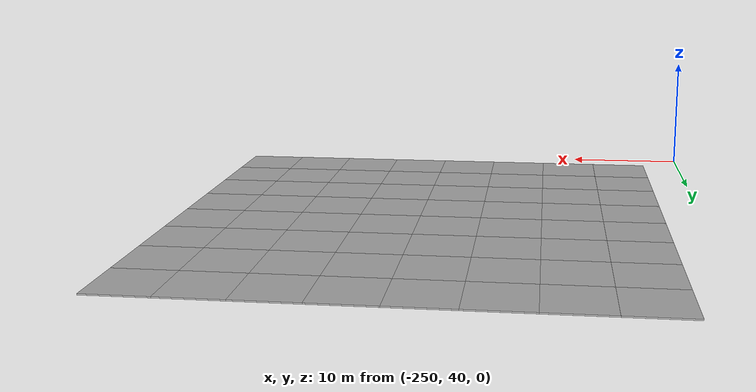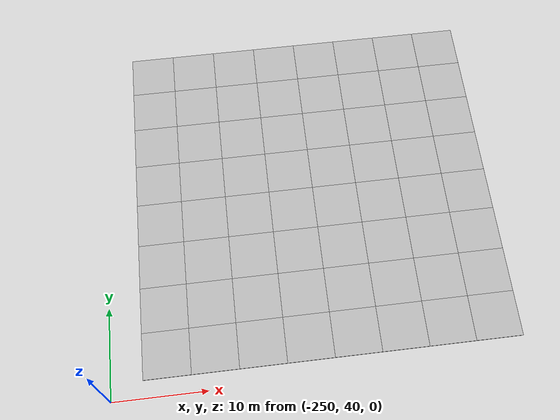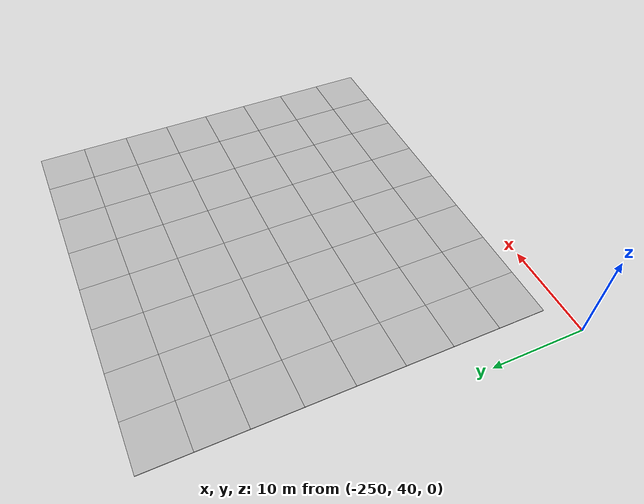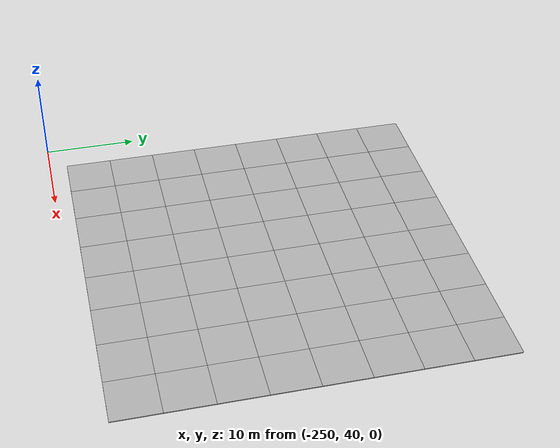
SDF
<sdf version="1.7">
 <world name="default">
  <model name="mud_plane_40x40_25">
   <model name="mud_plane_20x20">
    <model name="mud_plane">
     <static>1</static>
     <link name="link">
      <collision name="collision"><geometry><box><size>10 10 0.1</size></box></geometry></collision>
      <visual name="visual_1">
       <pose>-2.5 2.5 -0.05 0 -0 0</pose>
       <cast_shadows>0</cast_shadows>
       <geometry><box><size>5 5 0.1</size></box></geometry>
       <material>
        <script>
         <uri>model://mud_plane/materials/scripts</uri>
         <uri>model://mud_plane/materials/textures</uri>
         <name>vrc/mud</name>
        </script>
       </material>
      </visual>
      <visual name="visual_2">
       <pose>2.5 2.5 -0.05 0 -0 0</pose>
       <cast_shadows>0</cast_shadows>
       <geometry><box><size>5 5 0.1</size></box></geometry>
       <material>
        <script>
         <uri>model://mud_plane/materials/scripts</uri>
         <uri>model://mud_plane/materials/textures</uri>
         <name>vrc/mud</name>
        </script>
       </material>
      </visual>
      <visual name="visual_3">
       <pose>2.5 -2.5 -0.05 0 -0 0</pose>
       <cast_shadows>0</cast_shadows>
       <geometry><box><size>5 5 0.1</size></box></geometry>
       <material>
        <script>
         <uri>model://mud_plane/materials/scripts</uri>
         <uri>model://mud_plane/materials/textures</uri>
         <name>vrc/mud</name>
        </script>
       </material>
      </visual>
      <visual name="visual_4">
       <pose>-2.5 -2.5 -0.05 0 -0 0</pose>
       <cast_shadows>0</cast_shadows>
       <geometry><box><size>5 5 0.1</size></box></geometry>
       <material>
        <script>
         <uri>model://mud_plane/materials/scripts</uri>
         <uri>model://mud_plane/materials/textures</uri>
         <name>vrc/mud</name>
        </script>
       </material>
      </visual>
     </link>
     <pose>-4.99986 -4.99991 0 0 -0 0</pose>
    </model>
    <model name="mud_plane_0">
     <static>1</static>
     <link name="link">
      <collision name="collision"><geometry><box><size>10 10 0.1</size></box></geometry></collision>
      <visual name="visual_1">
       <pose>-2.5 2.5 -0.05 0 -0 0</pose>
       <cast_shadows>0</cast_shadows>
       <geometry><box><size>5 5 0.1</size></box></geometry>
       <material>
        <script>
         <uri>model://mud_plane/materials/scripts</uri>
         <uri>model://mud_plane/materials/textures</uri>
         <name>vrc/mud</name>
        </script>
       </material>
      </visual>
      <visual name="visual_2">
       <pose>2.5 2.5 -0.05 0 -0 0</pose>
       <cast_shadows>0</cast_shadows>
       <geometry><box><size>5 5 0.1</size></box></geometry>
       <material>
        <script>
         <uri>model://mud_plane/materials/scripts</uri>
         <uri>model://mud_plane/materials/textures</uri>
         <name>vrc/mud</name>
        </script>
       </material>
      </visual>
      <visual name="visual_3">
       <pose>2.5 -2.5 -0.05 0 -0 0</pose>
       <cast_shadows>0</cast_shadows>
       <geometry><box><size>5 5 0.1</size></box></geometry>
       <material>
        <script>
         <uri>model://mud_plane/materials/scripts</uri>
         <uri>model://mud_plane/materials/textures</uri>
         <name>vrc/mud</name>
        </script>
       </material>
      </visual>
      <visual name="visual_4">
       <pose>-2.5 -2.5 -0.05 0 -0 0</pose>
       <cast_shadows>0</cast_shadows>
       <geometry><box><size>5 5 0.1</size></box></geometry>
       <material>
        <script>
         <uri>model://mud_plane/materials/scripts</uri>
         <uri>model://mud_plane/materials/textures</uri>
         <name>vrc/mud</name>
        </script>
       </material>
      </visual>
     </link>
     <pose>-4.99946 4.99954 0 0 -0 0</pose>
    </model>
    <model name="mud_plane_1">
     <static>1</static>
     <link name="link">
      <collision name="collision"><geometry><box><size>10 10 0.1</size></box></geometry></collision>
      <visual name="visual_1">
       <pose>-2.5 2.5 -0.05 0 -0 0</pose>
       <cast_shadows>0</cast_shadows>
       <geometry><box><size>5 5 0.1</size></box></geometry>
       <material>
        <script>
         <uri>model://mud_plane/materials/scripts</uri>
         <uri>model://mud_plane/materials/textures</uri>
         <name>vrc/mud</name>
        </script>
       </material>
      </visual>
      <visual name="visual_2">
       <pose>2.5 2.5 -0.05 0 -0 0</pose>
       <cast_shadows>0</cast_shadows>
       <geometry><box><size>5 5 0.1</size></box></geometry>
       <material>
        <script>
         <uri>model://mud_plane/materials/scripts</uri>
         <uri>model://mud_plane/materials/textures</uri>
         <name>vrc/mud</name>
        </script>
       </material>
      </visual>
      <visual name="visual_3">
       <pose>2.5 -2.5 -0.05 0 -0 0</pose>
       <cast_shadows>0</cast_shadows>
       <geometry><box><size>5 5 0.1</size></box></geometry>
       <material>
        <script>
         <uri>model://mud_plane/materials/scripts</uri>
         <uri>model://mud_plane/materials/textures</uri>
         <name>vrc/mud</name>
        </script>
       </material>
      </visual>
      <visual name="visual_4">
       <pose>-2.5 -2.5 -0.05 0 -0 0</pose>
       <cast_shadows>0</cast_shadows>
       <geometry><box><size>5 5 0.1</size></box></geometry>
       <material>
        <script>
         <uri>model://mud_plane/materials/scripts</uri>
         <uri>model://mud_plane/materials/textures</uri>
         <name>vrc/mud</name>
        </script>
       </material>
      </visual>
     </link>
     <pose>4.99964 -4.99949 0 0 -0 0</pose>
    </model>
    <model name="mud_plane_2">
     <static>1</static>
     <link name="link">
      <collision name="collision"><geometry><box><size>10 10 0.1</size></box></geometry></collision>
      <visual name="visual_1">
       <pose>-2.5 2.5 -0.05 0 -0 0</pose>
       <cast_shadows>0</cast_shadows>
       <geometry><box><size>5 5 0.1</size></box></geometry>
       <material>
        <script>
         <uri>model://mud_plane/materials/scripts</uri>
         <uri>model://mud_plane/materials/textures</uri>
         <name>vrc/mud</name>
        </script>
       </material>
      </visual>
      <visual name="visual_2">
       <pose>2.5 2.5 -0.05 0 -0 0</pose>
       <cast_shadows>0</cast_shadows>
       <geometry><box><size>5 5 0.1</size></box></geometry>
       <material>
        <script>
         <uri>model://mud_plane/materials/scripts</uri>
         <uri>model://mud_plane/materials/textures</uri>
         <name>vrc/mud</name>
        </script>
       </material>
      </visual>
      <visual name="visual_3">
       <pose>2.5 -2.5 -0.05 0 -0 0</pose>
       <cast_shadows>0</cast_shadows>
       <geometry><box><size>5 5 0.1</size></box></geometry>
       <material>
        <script>
         <uri>model://mud_plane/materials/scripts</uri>
         <uri>model://mud_plane/materials/textures</uri>
         <name>vrc/mud</name>
        </script>
       </material>
      </visual>
      <visual name="visual_4">
       <pose>-2.5 -2.5 -0.05 0 -0 0</pose>
       <cast_shadows>0</cast_shadows>
       <geometry><box><size>5 5 0.1</size></box></geometry>
       <material>
        <script>
         <uri>model://mud_plane/materials/scripts</uri>
         <uri>model://mud_plane/materials/textures</uri>
         <name>vrc/mud</name>
        </script>
       </material>
      </visual>
     </link>
     <pose>4.99967 4.99986 0 0 -0 0</pose>
    </model>
    <static>0</static>
    <pose>-9.99895 9.99843 0 0 -0 0</pose>
   </model>
   <model name="mud_plane_20x20_0">
    <model name="mud_plane">
     <static>1</static>
     <link name="link">
      <collision name="collision"><geometry><box><size>10 10 0.1</size></box></geometry></collision>
      <visual name="visual_1">
       <pose>-2.5 2.5 -0.05 0 -0 0</pose>
       <cast_shadows>0</cast_shadows>
       <geometry><box><size>5 5 0.1</size></box></geometry>
       <material>
        <script>
         <uri>model://mud_plane/materials/scripts</uri>
         <uri>model://mud_plane/materials/textures</uri>
         <name>vrc/mud</name>
        </script>
       </material>
      </visual>
      <visual name="visual_2">
       <pose>2.5 2.5 -0.05 0 -0 0</pose>
       <cast_shadows>0</cast_shadows>
       <geometry><box><size>5 5 0.1</size></box></geometry>
       <material>
        <script>
         <uri>model://mud_plane/materials/scripts</uri>
         <uri>model://mud_plane/materials/textures</uri>
         <name>vrc/mud</name>
        </script>
       </material>
      </visual>
      <visual name="visual_3">
       <pose>2.5 -2.5 -0.05 0 -0 0</pose>
       <cast_shadows>0</cast_shadows>
       <geometry><box><size>5 5 0.1</size></box></geometry>
       <material>
        <script>
         <uri>model://mud_plane/materials/scripts</uri>
         <uri>model://mud_plane/materials/textures</uri>
         <name>vrc/mud</name>
        </script>
       </material>
      </visual>
      <visual name="visual_4">
       <pose>-2.5 -2.5 -0.05 0 -0 0</pose>
       <cast_shadows>0</cast_shadows>
       <geometry><box><size>5 5 0.1</size></box></geometry>
       <material>
        <script>
         <uri>model://mud_plane/materials/scripts</uri>
         <uri>model://mud_plane/materials/textures</uri>
         <name>vrc/mud</name>
        </script>
       </material>
      </visual>
     </link>
     <pose>-4.99986 -4.99991 0 0 -0 0</pose>
    </model>
    <model name="mud_plane_0">
     <static>1</static>
     <link name="link">
      <collision name="collision"><geometry><box><size>10 10 0.1</size></box></geometry></collision>
      <visual name="visual_1">
       <pose>-2.5 2.5 -0.05 0 -0 0</pose>
       <cast_shadows>0</cast_shadows>
       <geometry><box><size>5 5 0.1</size></box></geometry>
       <material>
        <script>
         <uri>model://mud_plane/materials/scripts</uri>
         <uri>model://mud_plane/materials/textures</uri>
         <name>vrc/mud</name>
        </script>
       </material>
      </visual>
      <visual name="visual_2">
       <pose>2.5 2.5 -0.05 0 -0 0</pose>
       <cast_shadows>0</cast_shadows>
       <geometry><box><size>5 5 0.1</size></box></geometry>
       <material>
        <script>
         <uri>model://mud_plane/materials/scripts</uri>
         <uri>model://mud_plane/materials/textures</uri>
         <name>vrc/mud</name>
        </script>
       </material>
      </visual>
      <visual name="visual_3">
       <pose>2.5 -2.5 -0.05 0 -0 0</pose>
       <cast_shadows>0</cast_shadows>
       <geometry><box><size>5 5 0.1</size></box></geometry>
       <material>
        <script>
         <uri>model://mud_plane/materials/scripts</uri>
         <uri>model://mud_plane/materials/textures</uri>
         <name>vrc/mud</name>
        </script>
       </material>
      </visual>
      <visual name="visual_4">
       <pose>-2.5 -2.5 -0.05 0 -0 0</pose>
       <cast_shadows>0</cast_shadows>
       <geometry><box><size>5 5 0.1</size></box></geometry>
       <material>
        <script>
         <uri>model://mud_plane/materials/scripts</uri>
         <uri>model://mud_plane/materials/textures</uri>
         <name>vrc/mud</name>
        </script>
       </material>
      </visual>
     </link>
     <pose>-4.99946 4.99954 0 0 -0 0</pose>
    </model>
    <model name="mud_plane_1">
     <static>1</static>
     <link name="link">
      <collision name="collision"><geometry><box><size>10 10 0.1</size></box></geometry></collision>
      <visual name="visual_1">
       <pose>-2.5 2.5 -0.05 0 -0 0</pose>
       <cast_shadows>0</cast_shadows>
       <geometry><box><size>5 5 0.1</size></box></geometry>
       <material>
        <script>
         <uri>model://mud_plane/materials/scripts</uri>
         <uri>model://mud_plane/materials/textures</uri>
         <name>vrc/mud</name>
        </script>
       </material>
      </visual>
      <visual name="visual_2">
       <pose>2.5 2.5 -0.05 0 -0 0</pose>
       <cast_shadows>0</cast_shadows>
       <geometry><box><size>5 5 0.1</size></box></geometry>
       <material>
        <script>
         <uri>model://mud_plane/materials/scripts</uri>
         <uri>model://mud_plane/materials/textures</uri>
         <name>vrc/mud</name>
        </script>
       </material>
      </visual>
      <visual name="visual_3">
       <pose>2.5 -2.5 -0.05 0 -0 0</pose>
       <cast_shadows>0</cast_shadows>
       <geometry><box><size>5 5 0.1</size></box></geometry>
       <material>
        <script>
         <uri>model://mud_plane/materials/scripts</uri>
         <uri>model://mud_plane/materials/textures</uri>
         <name>vrc/mud</name>
        </script>
       </material>
      </visual>
      <visual name="visual_4">
       <pose>-2.5 -2.5 -0.05 0 -0 0</pose>
       <cast_shadows>0</cast_shadows>
       <geometry><box><size>5 5 0.1</size></box></geometry>
       <material>
        <script>
         <uri>model://mud_plane/materials/scripts</uri>
         <uri>model://mud_plane/materials/textures</uri>
         <name>vrc/mud</name>
        </script>
       </material>
      </visual>
     </link>
     <pose>4.99964 -4.99949 0 0 -0 0</pose>
    </model>
    <model name="mud_plane_2">
     <static>1</static>
     <link name="link">
      <collision name="collision"><geometry><box><size>10 10 0.1</size></box></geometry></collision>
      <visual name="visual_1">
       <pose>-2.5 2.5 -0.05 0 -0 0</pose>
       <cast_shadows>0</cast_shadows>
       <geometry><box><size>5 5 0.1</size></box></geometry>
       <material>
        <script>
         <uri>model://mud_plane/materials/scripts</uri>
         <uri>model://mud_plane/materials/textures</uri>
         <name>vrc/mud</name>
        </script>
       </material>
      </visual>
      <visual name="visual_2">
       <pose>2.5 2.5 -0.05 0 -0 0</pose>
       <cast_shadows>0</cast_shadows>
       <geometry><box><size>5 5 0.1</size></box></geometry>
       <material>
        <script>
         <uri>model://mud_plane/materials/scripts</uri>
         <uri>model://mud_plane/materials/textures</uri>
         <name>vrc/mud</name>
        </script>
       </material>
      </visual>
      <visual name="visual_3">
       <pose>2.5 -2.5 -0.05 0 -0 0</pose>
       <cast_shadows>0</cast_shadows>
       <geometry><box><size>5 5 0.1</size></box></geometry>
       <material>
        <script>
         <uri>model://mud_plane/materials/scripts</uri>
         <uri>model://mud_plane/materials/textures</uri>
         <name>vrc/mud</name>
        </script>
       </material>
      </visual>
      <visual name="visual_4">
       <pose>-2.5 -2.5 -0.05 0 -0 0</pose>
       <cast_shadows>0</cast_shadows>
       <geometry><box><size>5 5 0.1</size></box></geometry>
       <material>
        <script>
         <uri>model://mud_plane/materials/scripts</uri>
         <uri>model://mud_plane/materials/textures</uri>
         <name>vrc/mud</name>
        </script>
       </material>
      </visual>
     </link>
     <pose>4.99967 4.99986 0 0 -0 0</pose>
    </model>
    <static>0</static>
    <pose>9.99933 9.9997 0 0 -0 0</pose>
   </model>
   <model name="mud_plane_20x20_1">
    <model name="mud_plane">
     <static>1</static>
     <link name="link">
      <collision name="collision"><geometry><box><size>10 10 0.1</size></box></geometry></collision>
      <visual name="visual_1">
       <pose>-2.5 2.5 -0.05 0 -0 0</pose>
       <cast_shadows>0</cast_shadows>
       <geometry><box><size>5 5 0.1</size></box></geometry>
       <material>
        <script>
         <uri>model://mud_plane/materials/scripts</uri>
         <uri>model://mud_plane/materials/textures</uri>
         <name>vrc/mud</name>
        </script>
       </material>
      </visual>
      <visual name="visual_2">
       <pose>2.5 2.5 -0.05 0 -0 0</pose>
       <cast_shadows>0</cast_shadows>
       <geometry><box><size>5 5 0.1</size></box></geometry>
       <material>
        <script>
         <uri>model://mud_plane/materials/scripts</uri>
         <uri>model://mud_plane/materials/textures</uri>
         <name>vrc/mud</name>
        </script>
       </material>
      </visual>
      <visual name="visual_3">
       <pose>2.5 -2.5 -0.05 0 -0 0</pose>
       <cast_shadows>0</cast_shadows>
       <geometry><box><size>5 5 0.1</size></box></geometry>
       <material>
        <script>
         <uri>model://mud_plane/materials/scripts</uri>
         <uri>model://mud_plane/materials/textures</uri>
         <name>vrc/mud</name>
        </script>
       </material>
      </visual>
      <visual name="visual_4">
       <pose>-2.5 -2.5 -0.05 0 -0 0</pose>
       <cast_shadows>0</cast_shadows>
       <geometry><box><size>5 5 0.1</size></box></geometry>
       <material>
        <script>
         <uri>model://mud_plane/materials/scripts</uri>
         <uri>model://mud_plane/materials/textures</uri>
         <name>vrc/mud</name>
        </script>
       </material>
      </visual>
     </link>
     <pose>-4.99986 -4.99991 0 0 -0 0</pose>
    </model>
    <model name="mud_plane_0">
     <static>1</static>
     <link name="link">
      <collision name="collision"><geometry><box><size>10 10 0.1</size></box></geometry></collision>
      <visual name="visual_1">
       <pose>-2.5 2.5 -0.05 0 -0 0</pose>
       <cast_shadows>0</cast_shadows>
       <geometry><box><size>5 5 0.1</size></box></geometry>
       <material>
        <script>
         <uri>model://mud_plane/materials/scripts</uri>
         <uri>model://mud_plane/materials/textures</uri>
         <name>vrc/mud</name>
        </script>
       </material>
      </visual>
      <visual name="visual_2">
       <pose>2.5 2.5 -0.05 0 -0 0</pose>
       <cast_shadows>0</cast_shadows>
       <geometry><box><size>5 5 0.1</size></box></geometry>
       <material>
        <script>
         <uri>model://mud_plane/materials/scripts</uri>
         <uri>model://mud_plane/materials/textures</uri>
         <name>vrc/mud</name>
        </script>
       </material>
      </visual>
      <visual name="visual_3">
       <pose>2.5 -2.5 -0.05 0 -0 0</pose>
       <cast_shadows>0</cast_shadows>
       <geometry><box><size>5 5 0.1</size></box></geometry>
       <material>
        <script>
         <uri>model://mud_plane/materials/scripts</uri>
         <uri>model://mud_plane/materials/textures</uri>
         <name>vrc/mud</name>
        </script>
       </material>
      </visual>
      <visual name="visual_4">
       <pose>-2.5 -2.5 -0.05 0 -0 0</pose>
       <cast_shadows>0</cast_shadows>
       <geometry><box><size>5 5 0.1</size></box></geometry>
       <material>
        <script>
         <uri>model://mud_plane/materials/scripts</uri>
         <uri>model://mud_plane/materials/textures</uri>
         <name>vrc/mud</name>
        </script>
       </material>
      </visual>
     </link>
     <pose>-4.99946 4.99954 0 0 -0 0</pose>
    </model>
    <model name="mud_plane_1">
     <static>1</static>
     <link name="link">
      <collision name="collision"><geometry><box><size>10 10 0.1</size></box></geometry></collision>
      <visual name="visual_1">
       <pose>-2.5 2.5 -0.05 0 -0 0</pose>
       <cast_shadows>0</cast_shadows>
       <geometry><box><size>5 5 0.1</size></box></geometry>
       <material>
        <script>
         <uri>model://mud_plane/materials/scripts</uri>
         <uri>model://mud_plane/materials/textures</uri>
         <name>vrc/mud</name>
        </script>
       </material>
      </visual>
      <visual name="visual_2">
       <pose>2.5 2.5 -0.05 0 -0 0</pose>
       <cast_shadows>0</cast_shadows>
       <geometry><box><size>5 5 0.1</size></box></geometry>
       <material>
        <script>
         <uri>model://mud_plane/materials/scripts</uri>
         <uri>model://mud_plane/materials/textures</uri>
         <name>vrc/mud</name>
        </script>
       </material>
      </visual>
      <visual name="visual_3">
       <pose>2.5 -2.5 -0.05 0 -0 0</pose>
       <cast_shadows>0</cast_shadows>
       <geometry><box><size>5 5 0.1</size></box></geometry>
       <material>
        <script>
         <uri>model://mud_plane/materials/scripts</uri>
         <uri>model://mud_plane/materials/textures</uri>
         <name>vrc/mud</name>
        </script>
       </material>
      </visual>
      <visual name="visual_4">
       <pose>-2.5 -2.5 -0.05 0 -0 0</pose>
       <cast_shadows>0</cast_shadows>
       <geometry><box><size>5 5 0.1</size></box></geometry>
       <material>
        <script>
         <uri>model://mud_plane/materials/scripts</uri>
         <uri>model://mud_plane/materials/textures</uri>
         <name>vrc/mud</name>
        </script>
       </material>
      </visual>
     </link>
     <pose>4.99964 -4.99949 0 0 -0 0</pose>
    </model>
    <model name="mud_plane_2">
     <static>1</static>
     <link name="link">
      <collision name="collision"><geometry><box><size>10 10 0.1</size></box></geometry></collision>
      <visual name="visual_1">
       <pose>-2.5 2.5 -0.05 0 -0 0</pose>
       <cast_shadows>0</cast_shadows>
       <geometry><box><size>5 5 0.1</size></box></geometry>
       <material>
        <script>
         <uri>model://mud_plane/materials/scripts</uri>
         <uri>model://mud_plane/materials/textures</uri>
         <name>vrc/mud</name>
        </script>
       </material>
      </visual>
      <visual name="visual_2">
       <pose>2.5 2.5 -0.05 0 -0 0</pose>
       <cast_shadows>0</cast_shadows>
       <geometry><box><size>5 5 0.1</size></box></geometry>
       <material>
        <script>
         <uri>model://mud_plane/materials/scripts</uri>
         <uri>model://mud_plane/materials/textures</uri>
         <name>vrc/mud</name>
        </script>
       </material>
      </visual>
      <visual name="visual_3">
       <pose>2.5 -2.5 -0.05 0 -0 0</pose>
       <cast_shadows>0</cast_shadows>
       <geometry><box><size>5 5 0.1</size></box></geometry>
       <material>
        <script>
         <uri>model://mud_plane/materials/scripts</uri>
         <uri>model://mud_plane/materials/textures</uri>
         <name>vrc/mud</name>
        </script>
       </material>
      </visual>
      <visual name="visual_4">
       <pose>-2.5 -2.5 -0.05 0 -0 0</pose>
       <cast_shadows>0</cast_shadows>
       <geometry><box><size>5 5 0.1</size></box></geometry>
       <material>
        <script>
         <uri>model://mud_plane/materials/scripts</uri>
         <uri>model://mud_plane/materials/textures</uri>
         <name>vrc/mud</name>
        </script>
       </material>
      </visual>
     </link>
     <pose>4.99967 4.99986 0 0 -0 0</pose>
    </model>
    <static>0</static>
    <pose>9.9993 -9.99877 0 0 -0 0</pose>
   </model>
   <model name="mud_plane_20x20_2">
    <model name="mud_plane">
     <static>1</static>
     <link name="link">
      <collision name="collision"><geometry><box><size>10 10 0.1</size></box></geometry></collision>
      <visual name="visual_1">
       <pose>-2.5 2.5 -0.05 0 -0 0</pose>
       <cast_shadows>0</cast_shadows>
       <geometry><box><size>5 5 0.1</size></box></geometry>
       <material>
        <script>
         <uri>model://mud_plane/materials/scripts</uri>
         <uri>model://mud_plane/materials/textures</uri>
         <name>vrc/mud</name>
        </script>
       </material>
      </visual>
      <visual name="visual_2">
       <pose>2.5 2.5 -0.05 0 -0 0</pose>
       <cast_shadows>0</cast_shadows>
       <geometry><box><size>5 5 0.1</size></box></geometry>
       <material>
        <script>
         <uri>model://mud_plane/materials/scripts</uri>
         <uri>model://mud_plane/materials/textures</uri>
         <name>vrc/mud</name>
        </script>
       </material>
      </visual>
      <visual name="visual_3">
       <pose>2.5 -2.5 -0.05 0 -0 0</pose>
       <cast_shadows>0</cast_shadows>
       <geometry><box><size>5 5 0.1</size></box></geometry>
       <material>
        <script>
         <uri>model://mud_plane/materials/scripts</uri>
         <uri>model://mud_plane/materials/textures</uri>
         <name>vrc/mud</name>
        </script>
       </material>
      </visual>
      <visual name="visual_4">
       <pose>-2.5 -2.5 -0.05 0 -0 0</pose>
       <cast_shadows>0</cast_shadows>
       <geometry><box><size>5 5 0.1</size></box></geometry>
       <material>
        <script>
         <uri>model://mud_plane/materials/scripts</uri>
         <uri>model://mud_plane/materials/textures</uri>
         <name>vrc/mud</name>
        </script>
       </material>
      </visual>
     </link>
     <pose>-4.99986 -4.99991 0 0 -0 0</pose>
    </model>
    <model name="mud_plane_0">
     <static>1</static>
     <link name="link">
      <collision name="collision"><geometry><box><size>10 10 0.1</size></box></geometry></collision>
      <visual name="visual_1">
       <pose>-2.5 2.5 -0.05 0 -0 0</pose>
       <cast_shadows>0</cast_shadows>
       <geometry><box><size>5 5 0.1</size></box></geometry>
       <material>
        <script>
         <uri>model://mud_plane/materials/scripts</uri>
         <uri>model://mud_plane/materials/textures</uri>
         <name>vrc/mud</name>
        </script>
       </material>
      </visual>
      <visual name="visual_2">
       <pose>2.5 2.5 -0.05 0 -0 0</pose>
       <cast_shadows>0</cast_shadows>
       <geometry><box><size>5 5 0.1</size></box></geometry>
       <material>
        <script>
         <uri>model://mud_plane/materials/scripts</uri>
         <uri>model://mud_plane/materials/textures</uri>
         <name>vrc/mud</name>
        </script>
       </material>
      </visual>
      <visual name="visual_3">
       <pose>2.5 -2.5 -0.05 0 -0 0</pose>
       <cast_shadows>0</cast_shadows>
       <geometry><box><size>5 5 0.1</size></box></geometry>
       <material>
        <script>
         <uri>model://mud_plane/materials/scripts</uri>
         <uri>model://mud_plane/materials/textures</uri>
         <name>vrc/mud</name>
        </script>
       </material>
      </visual>
      <visual name="visual_4">
       <pose>-2.5 -2.5 -0.05 0 -0 0</pose>
       <cast_shadows>0</cast_shadows>
       <geometry><box><size>5 5 0.1</size></box></geometry>
       <material>
        <script>
         <uri>model://mud_plane/materials/scripts</uri>
         <uri>model://mud_plane/materials/textures</uri>
         <name>vrc/mud</name>
        </script>
       </material>
      </visual>
     </link>
     <pose>-4.99946 4.99954 0 0 -0 0</pose>
    </model>
    <model name="mud_plane_1">
     <static>1</static>
     <link name="link">
      <collision name="collision"><geometry><box><size>10 10 0.1</size></box></geometry></collision>
      <visual name="visual_1">
       <pose>-2.5 2.5 -0.05 0 -0 0</pose>
       <cast_shadows>0</cast_shadows>
       <geometry><box><size>5 5 0.1</size></box></geometry>
       <material>
        <script>
         <uri>model://mud_plane/materials/scripts</uri>
         <uri>model://mud_plane/materials/textures</uri>
         <name>vrc/mud</name>
        </script>
       </material>
      </visual>
      <visual name="visual_2">
       <pose>2.5 2.5 -0.05 0 -0 0</pose>
       <cast_shadows>0</cast_shadows>
       <geometry><box><size>5 5 0.1</size></box></geometry>
       <material>
        <script>
         <uri>model://mud_plane/materials/scripts</uri>
         <uri>model://mud_plane/materials/textures</uri>
         <name>vrc/mud</name>
        </script>
       </material>
      </visual>
      <visual name="visual_3">
       <pose>2.5 -2.5 -0.05 0 -0 0</pose>
       <cast_shadows>0</cast_shadows>
       <geometry><box><size>5 5 0.1</size></box></geometry>
       <material>
        <script>
         <uri>model://mud_plane/materials/scripts</uri>
         <uri>model://mud_plane/materials/textures</uri>
         <name>vrc/mud</name>
        </script>
       </material>
      </visual>
      <visual name="visual_4">
       <pose>-2.5 -2.5 -0.05 0 -0 0</pose>
       <cast_shadows>0</cast_shadows>
       <geometry><box><size>5 5 0.1</size></box></geometry>
       <material>
        <script>
         <uri>model://mud_plane/materials/scripts</uri>
         <uri>model://mud_plane/materials/textures</uri>
         <name>vrc/mud</name>
        </script>
       </material>
      </visual>
     </link>
     <pose>4.99964 -4.99949 0 0 -0 0</pose>
    </model>
    <model name="mud_plane_2">
     <static>1</static>
     <link name="link">
      <collision name="collision"><geometry><box><size>10 10 0.1</size></box></geometry></collision>
      <visual name="visual_1">
       <pose>-2.5 2.5 -0.05 0 -0 0</pose>
       <cast_shadows>0</cast_shadows>
       <geometry><box><size>5 5 0.1</size></box></geometry>
       <material>
        <script>
         <uri>model://mud_plane/materials/scripts</uri>
         <uri>model://mud_plane/materials/textures</uri>
         <name>vrc/mud</name>
        </script>
       </material>
      </visual>
      <visual name="visual_2">
       <pose>2.5 2.5 -0.05 0 -0 0</pose>
       <cast_shadows>0</cast_shadows>
       <geometry><box><size>5 5 0.1</size></box></geometry>
       <material>
        <script>
         <uri>model://mud_plane/materials/scripts</uri>
         <uri>model://mud_plane/materials/textures</uri>
         <name>vrc/mud</name>
        </script>
       </material>
      </visual>
      <visual name="visual_3">
       <pose>2.5 -2.5 -0.05 0 -0 0</pose>
       <cast_shadows>0</cast_shadows>
       <geometry><box><size>5 5 0.1</size></box></geometry>
       <material>
        <script>
         <uri>model://mud_plane/materials/scripts</uri>
         <uri>model://mud_plane/materials/textures</uri>
         <name>vrc/mud</name>
        </script>
       </material>
      </visual>
      <visual name="visual_4">
       <pose>-2.5 -2.5 -0.05 0 -0 0</pose>
       <cast_shadows>0</cast_shadows>
       <geometry><box><size>5 5 0.1</size></box></geometry>
       <material>
        <script>
         <uri>model://mud_plane/materials/scripts</uri>
         <uri>model://mud_plane/materials/textures</uri>
         <name>vrc/mud</name>
        </script>
       </material>
      </visual>
     </link>
     <pose>4.99967 4.99986 0 0 -0 0</pose>
    </model>
    <static>0</static>
    <pose>-9.99969 -9.99935 0 0 -0 0</pose>
   </model>
   <static>0</static>
   <pose>-226.716 61.9159 0 0 -0 0</pose>
  </model>
 </world>
</sdf>
